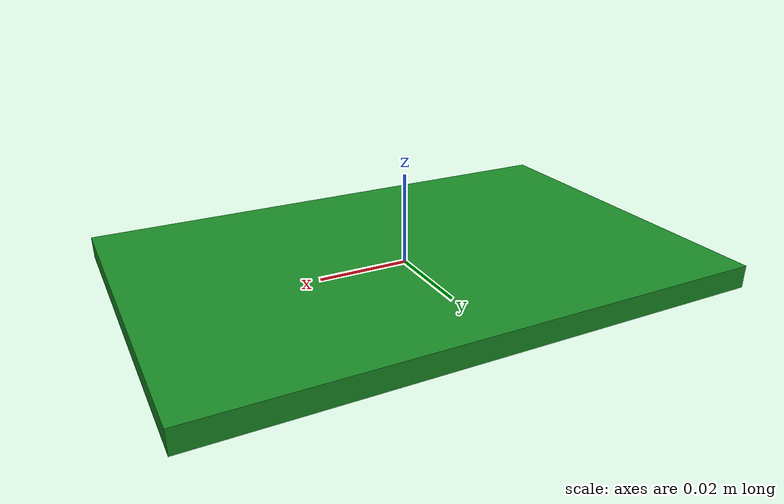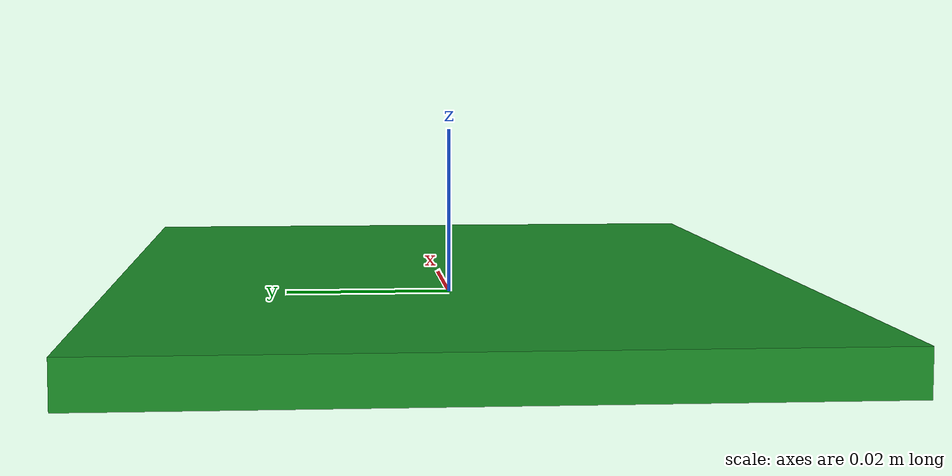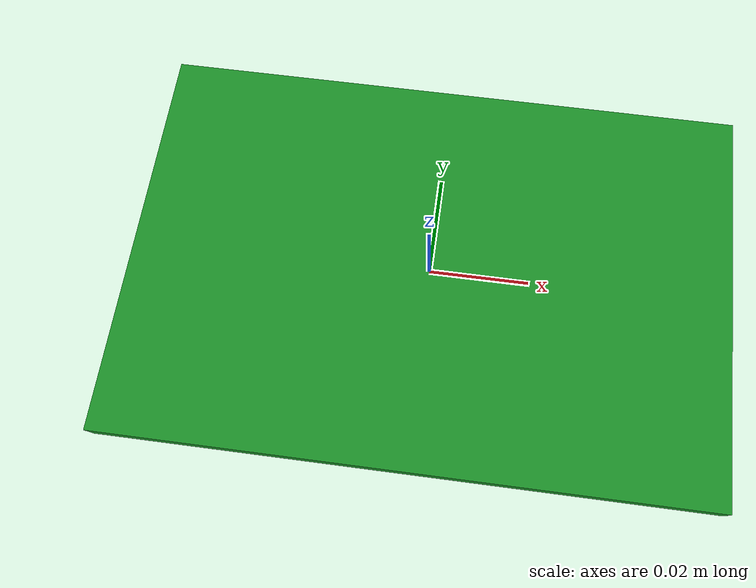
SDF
<?xml version="1.0" ?>
<sdf version="1.6">
  <model name="leaf_target">
    <static>true</static>
    <link name="leaf_link">
      <pose>0 0 0 0 0 0</pose>
      <visual name="leaf_visual">
        <geometry>
          <box>
            <size>0.12 0.08 0.005</size>
          </box>
        </geometry>
        <material>
          <ambient>0.10 0.55 0.15 1</ambient>
          <diffuse>0.10 0.55 0.15 1</diffuse>
        </material>
      </visual>
      <collision name="leaf_collision">
        <geometry>
          <box>
            <size>0.12 0.08 0.005</size>
          </box>
        </geometry>
      </collision>
    </link>
  </model>
</sdf>
